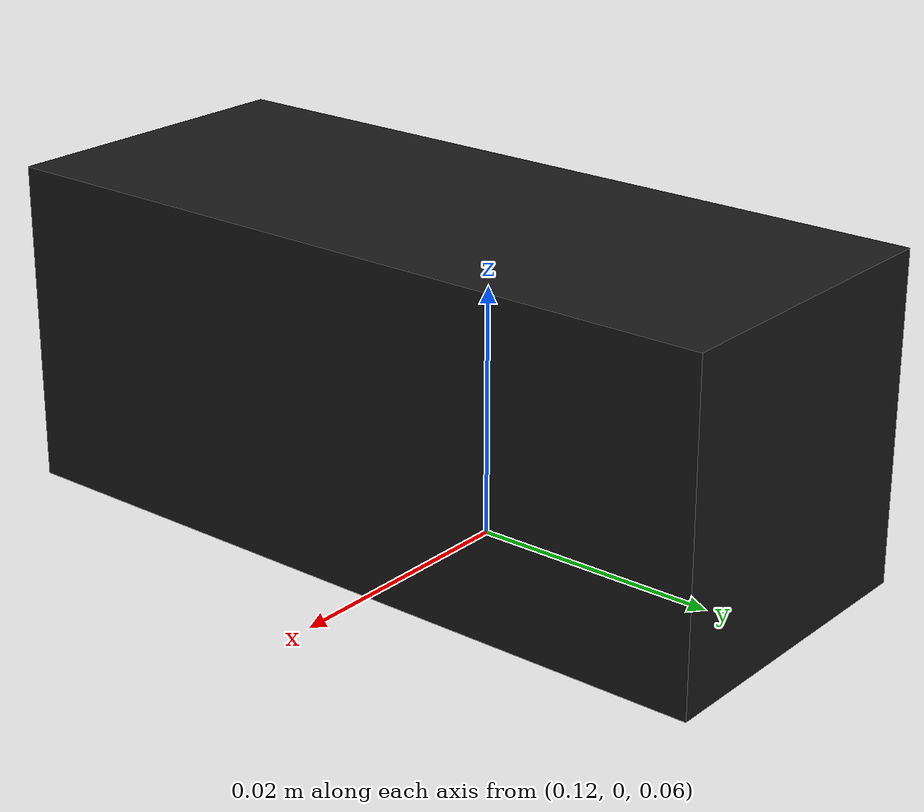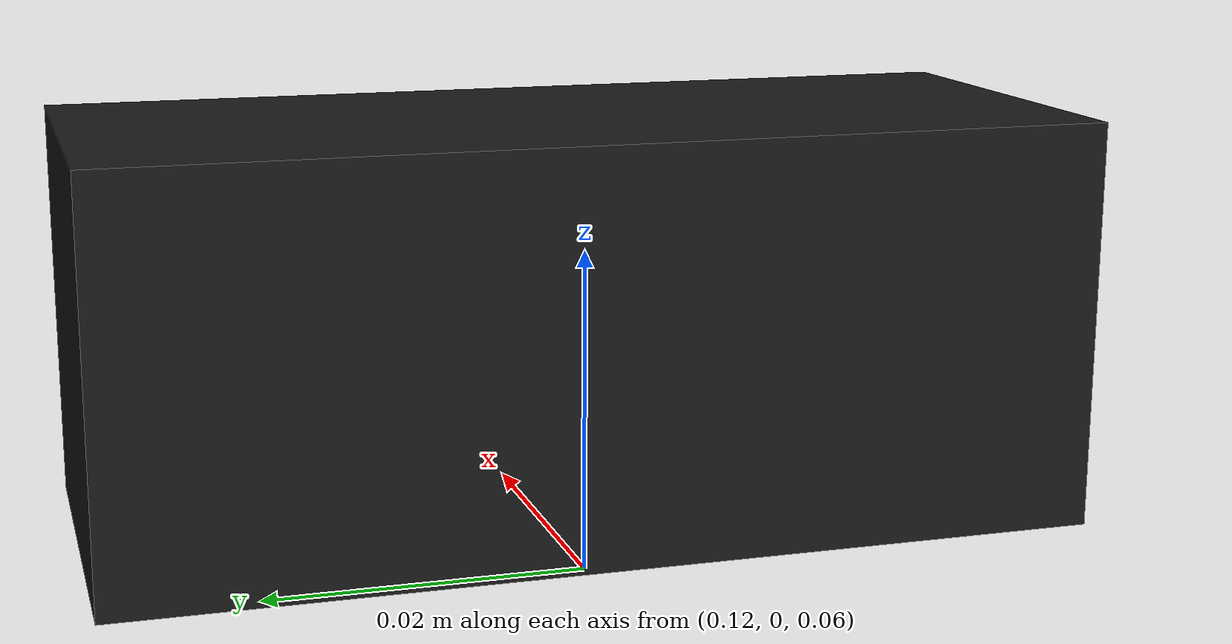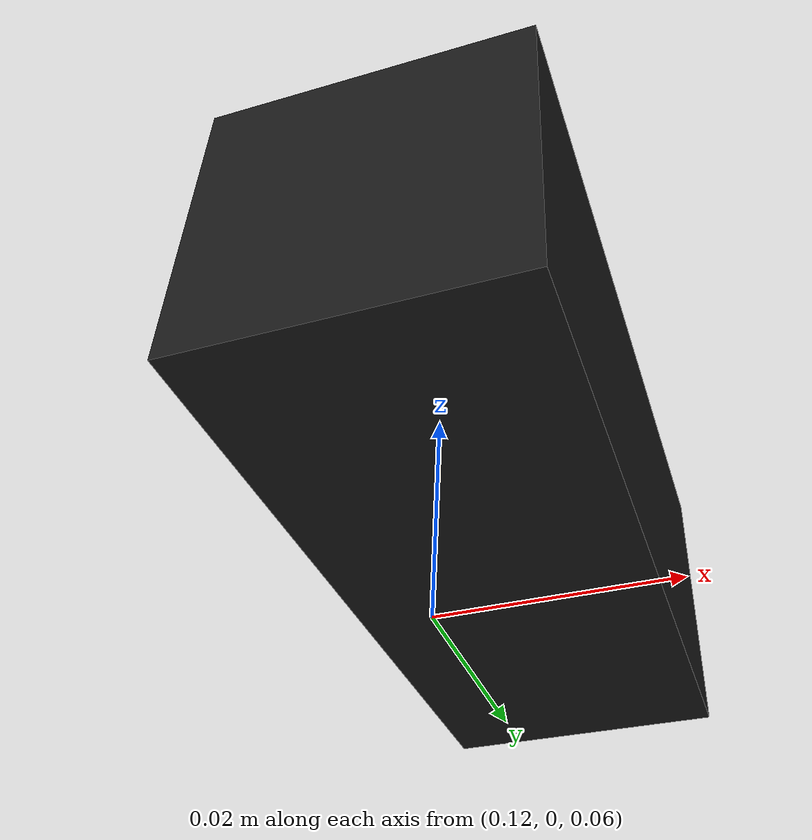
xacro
<?xml version="1.0"?>
<robot name="rtk2026_webcam" xmlns:xacro="http://www.ros.org/wiki/xacro">
  <xacro:arg name="parent" default="base_link"/>
  <xacro:arg name="xyz" default="0.125 0 0.075"/>
  <xacro:arg name="rpy" default="0 0 0"/>
  <xacro:include filename="$(find rtk2026_description)/urdf/common/materials.xacro"/>
  <xacro:include filename="$(find rtk2026_description)/urdf/common/inertials.xacro"/>
  <xacro:include filename="$(find rtk2026_description)/urdf/sensors/webcam.xacro"/>
  <link name="$(arg parent)"/>
  <xacro:rtk2026_webcam
    prefix="" parent="$(arg parent)"
    xyz="$(arg xyz)" rpy="$(arg rpy)"
    mass="0.035" width="0.060" height="0.025" depth="0.025"/>
</robot>

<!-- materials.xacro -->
<!--
  наша либа цветов
-->
<robot xmlns:xacro="http://www.ros.org/wiki/xacro">
  <material name="black"><color rgba="0.10 0.10 0.10 1.0"/></material>
  <material name="blue"><color rgba="0.00 0.00 0.80 1.0"/></material>
  <material name="green"><color rgba="0.40 0.90 0.40 1.0"/></material>
  <material name="gray"><color rgba="0.70 0.70 0.70 1.0"/></material>
  <material name="darkgray"><color rgba="0.30 0.30 0.30 1.0"/></material>
  <material name="red"><color rgba="0.80 0.00 0.00 1.0"/></material>
  <material name="white"><color rgba="1.00 1.00 1.00 1.0"/></material>
  <material name="yellow"><color rgba="0.80 0.80 0.00 1.0"/></material>
</robot>

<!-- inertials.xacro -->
<!--
  макросы для расчёта тензоров инерции
  простых однородных тел
-->
<robot xmlns:xacro="http://www.ros.org/wiki/xacro">
  <xacro:macro name="box_inertial" params="mass length width height cx cy cz">
    <inertial>
      <origin xyz="${cx} ${cy} ${cz}" rpy="0 0 0"/>
      <mass value="${mass}"/>
      <inertia
        ixx="${mass * (width*width + height*height) / 12.0}"
        ixy="0" ixz="0"
        iyy="${mass * (length*length + height*height) / 12.0}"
        iyz="0"
        izz="${mass * (length*length + width*width) / 12.0}"/>
    </inertial>
  </xacro:macro>
<!--
    Макрос инерции однородного шара.
  -->
  <xacro:macro name="sphere_inertial" params="mass radius">
    <inertial>
      <origin xyz="0 0 0" rpy="0 0 0"/>
      <mass value="${mass}"/>
      <inertia
        ixx="${2.0 * mass * radius * radius / 5.0}"
        ixy="0" ixz="0"
        iyy="${2.0 * mass * radius * radius / 5.0}"
        iyz="0"
        izz="${2.0 * mass * radius * radius / 5.0}"/>
    </inertial>
  </xacro:macro>

  <xacro:macro
    name="cylinder_inertial"
    params="mass radius length cx cy cz rpy:='0 0 0'">
    <inertial>
      <origin xyz="${cx} ${cy} ${cz}" rpy="${rpy}"/>
      <mass value="${mass}"/>
      <inertia
        ixx="${mass * (3.0*radius*radius + length*length) / 12.0}"
        ixy="0" ixz="0"
        iyy="${mass * (3.0*radius*radius + length*length) / 12.0}"
        iyz="0"
        izz="${mass * radius * radius / 2.0}"/>
    </inertial>
  </xacro:macro>

  <xacro:macro name="wheel_inertial_y" params="mass radius width">
    <inertial>
      <origin xyz="0 0 0" rpy="0 0 0"/>
      <mass value="${mass}"/>
      <inertia
        ixx="${mass * (3.0*radius*radius + width*width) / 12.0}"
        ixy="0" ixz="0"
        iyy="${mass * radius * radius / 2.0}"
        iyz="0"
        izz="${mass * (3.0*radius*radius + width*width) / 12.0}"/>
    </inertial>
  </xacro:macro>
</robot>

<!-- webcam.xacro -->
<robot xmlns:xacro="http://www.ros.org/wiki/xacro">
  <xacro:macro name="rtk2026_webcam" params="prefix parent xyz rpy mass width height depth">
    <!-- camera_link использует соглашение робота: X вперёд, Y влево, Z вверх. -->
    <link name="${prefix}camera_link">
      <xacro:box_inertial
        mass="${mass}" length="${depth}" width="${width}" height="${height}"
        cx="0" cy="0" cz="0"/>
      <visual>
        <geometry><box size="${depth} ${width} ${height}"/></geometry>
        <material name="black"/>
      </visual>
      <collision><geometry><box size="${depth} ${width} ${height}"/></geometry></collision>
    </link>
    <joint name="${prefix}camera_joint" type="fixed">
      <parent link="${parent}"/>
      <child link="${prefix}camera_link"/>
      <origin xyz="${xyz}" rpy="${rpy}"/>
    </joint>

    <!-- Optical frame по REP-103: Z вперёд, X вправо, Y вниз. -->
    <link name="${prefix}camera_optical_frame"/>
    <joint name="${prefix}camera_optical_joint" type="fixed">
      <parent link="${prefix}camera_link"/>
      <child link="${prefix}camera_optical_frame"/>
      <origin xyz="0 0 0" rpy="${-pi/2.0} 0 ${-pi/2.0}"/>
    </joint>
  </xacro:macro>
</robot>
